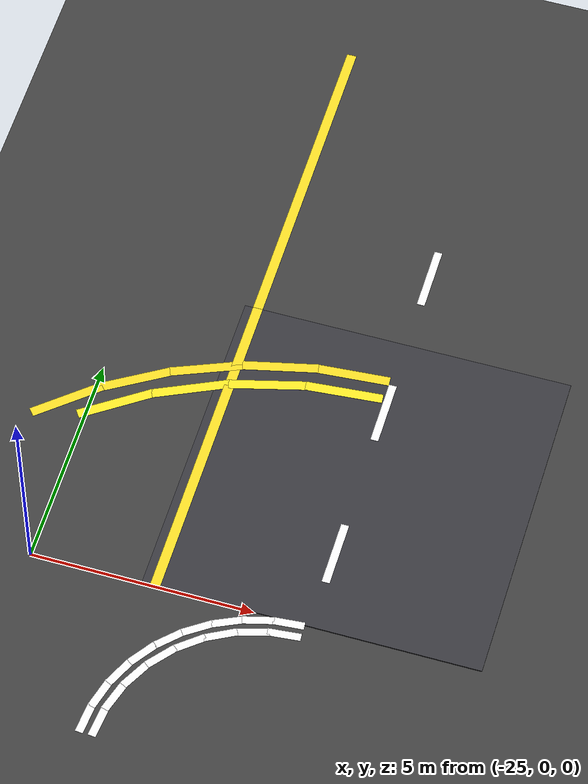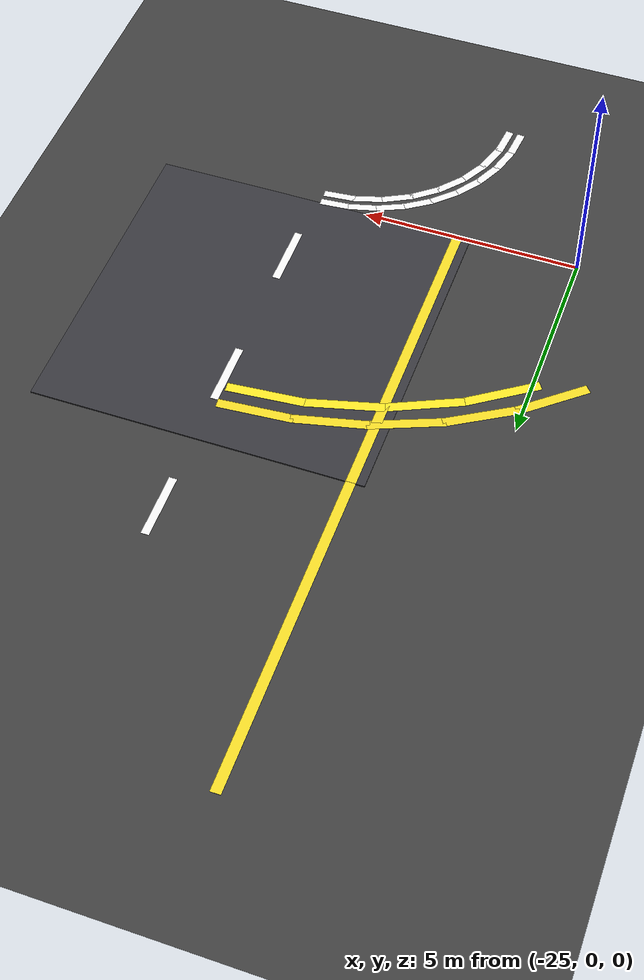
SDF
<sdf version="1.7">
 <world name="compact_city">
  <model name="ground_plane">
   <static>1</static>
   <pose>0 0 0.01 0 -0 0</pose>
   <link name="link">
    <collision name="collision">
     <geometry><plane><normal>0 0 1</normal><size>200 200</size></plane></geometry>
    </collision>
    <visual name="visual">
     <geometry><plane><normal>0 0 1</normal><size>200 200</size></plane></geometry>
     <material>
      <ambient>0.2 0.2 0.2 1</ambient>
      <diffuse>0.25 0.25 0.25 1</diffuse>
      <specular>0.1 0.1 0.1 1</specular>
     </material>
    </visual>
   </link>
  </model>
  <model name="road_tile_42">
   <static>1</static>
   <pose>-18.75 3.75 0.015 0 -0 1.5708</pose>
   <link name="link">
    <collision name="collision"><geometry><box><size>7.5 7.5 0.03</size></box></geometry></collision>
    <visual name="visual">
     <geometry><box><size>7.5 7.5 0.03</size></box></geometry>
     <material>
      <ambient>0.18 0.18 0.2 1</ambient>
      <diffuse>0.22 0.22 0.24 1</diffuse>
      <specular>0.1 0.1 0.1 1</specular>
     </material>
    </visual>
   </link>
  </model>
  <model name="el_169">
   <static>1</static>
   <pose>-22.2 3.75 0.038 0 -0 1.5708</pose>
   <link name="link">
    <visual name="v">
     <geometry><box><size>7.5 0.225 0.002</size></box></geometry>
     <material><ambient>0.9 0.8 0.1 1</ambient><diffuse>0.95 0.85 0.15 1</diffuse></material>
    </visual>
   </link>
  </model>
  <model name="el_171">
   <static>1</static>
   <pose>-22.2 11.25 0.038 0 -0 1.5708</pose>
   <link name="link">
    <visual name="v">
     <geometry><box><size>7.5 0.225 0.002</size></box></geometry>
     <material><ambient>0.9 0.8 0.1 1</ambient><diffuse>0.95 0.85 0.15 1</diffuse></material>
    </visual>
   </link>
  </model>
  <model name="ld_23">
   <static>1</static>
   <pose>-18.75 1.875 0.038 0 -0 1.5708</pose>
   <link name="link">
    <visual name="v">
     <geometry><box><size>1.5 0.18 0.002</size></box></geometry>
     <material><ambient>1 1 1 1</ambient><diffuse>0.95 0.95 0.95 1</diffuse></material>
    </visual>
   </link>
  </model>
  <model name="ld_24">
   <static>1</static>
   <pose>-18.75 5.625 0.038 0 -0 1.5708</pose>
   <link name="link">
    <visual name="v">
     <geometry><box><size>1.5 0.18 0.002</size></box></geometry>
     <material><ambient>1 1 1 1</ambient><diffuse>0.95 0.95 0.95 1</diffuse></material>
    </visual>
   </link>
  </model>
  <model name="ld_25">
   <static>1</static>
   <pose>-18.75 9.375 0.038 0 -0 1.5708</pose>
   <link name="link">
    <visual name="v">
     <geometry><box><size>1.5 0.18 0.002</size></box></geometry>
     <material><ambient>1 1 1 1</ambient><diffuse>0.95 0.95 0.95 1</diffuse></material>
    </visual>
   </link>
  </model>
  <model name="rr_650">
   <static>1</static>
   <pose>-19.2231 -0.34665 0.038 0 0 -3.04338</pose>
   <link name="link">
    <visual name="v">
     <geometry><box><size>0.730424 0.18 0.002</size></box></geometry>
     <material><ambient>1 1 1 1</ambient><diffuse>0.95 0.95 0.95 1</diffuse></material>
    </visual>
   </link>
  </model>
  <model name="rr_651">
   <static>1</static>
   <pose>-19.8865 -0.4785 0.038 0 0 -2.84708</pose>
   <link name="link">
    <visual name="v">
     <geometry><box><size>0.730424 0.18 0.002</size></box></geometry>
     <material><ambient>1 1 1 1</ambient><diffuse>0.95 0.95 0.95 1</diffuse></material>
    </visual>
   </link>
  </model>
  <model name="rr_652">
   <static>1</static>
   <pose>-20.5113 -0.7374 0.038 0 0 -2.65069</pose>
   <link name="link">
    <visual name="v">
     <geometry><box><size>0.730424 0.18 0.002</size></box></geometry>
     <material><ambient>1 1 1 1</ambient><diffuse>0.95 0.95 0.95 1</diffuse></material>
    </visual>
   </link>
  </model>
  <model name="rr_653">
   <static>1</static>
   <pose>-21.0737 -1.11315 0.038 0 0 -2.45438</pose>
   <link name="link">
    <visual name="v">
     <geometry><box><size>0.730424 0.18 0.002</size></box></geometry>
     <material><ambient>1 1 1 1</ambient><diffuse>0.95 0.95 0.95 1</diffuse></material>
    </visual>
   </link>
  </model>
  <model name="rr_654">
   <static>1</static>
   <pose>-21.5519 -1.59135 0.038 0 0 -2.25799</pose>
   <link name="link">
    <visual name="v">
     <geometry><box><size>0.730424 0.18 0.002</size></box></geometry>
     <material><ambient>1 1 1 1</ambient><diffuse>0.95 0.95 0.95 1</diffuse></material>
    </visual>
   </link>
  </model>
  <model name="rr_655">
   <static>1</static>
   <pose>-21.9276 -2.1537 0.038 0 0 -2.06169</pose>
   <link name="link">
    <visual name="v">
     <geometry><box><size>0.730424 0.18 0.002</size></box></geometry>
     <material><ambient>1 1 1 1</ambient><diffuse>0.95 0.95 0.95 1</diffuse></material>
    </visual>
   </link>
  </model>
  <model name="rr_656">
   <static>1</static>
   <pose>-22.1865 -2.77845 0.038 0 0 -1.86529</pose>
   <link name="link">
    <visual name="v">
     <geometry><box><size>0.730424 0.18 0.002</size></box></geometry>
     <material><ambient>1 1 1 1</ambient><diffuse>0.95 0.95 0.95 1</diffuse></material>
    </visual>
   </link>
  </model>
  <model name="rr_657">
   <static>1</static>
   <pose>-22.3183 -3.4419 0.038 0 0 -1.66898</pose>
   <link name="link">
    <visual name="v">
     <geometry><box><size>0.730424 0.18 0.002</size></box></geometry>
     <material><ambient>1 1 1 1</ambient><diffuse>0.95 0.95 0.95 1</diffuse></material>
    </visual>
   </link>
  </model>
  <model name="ro_684">
   <static>1</static>
   <pose>-19.6852 6.3885 0.038 0 0 -3.06309</pose>
   <link name="link">
    <visual name="v">
     <geometry><box><size>1.6806 0.225 0.002</size></box></geometry>
     <material><ambient>0.9 0.8 0.1 1</ambient><diffuse>0.95 0.85 0.15 1</diffuse></material>
    </visual>
   </link>
  </model>
  <model name="ro_685">
   <static>1</static>
   <pose>-21.2661 6.13815 0.038 0 0 -2.90598</pose>
   <link name="link">
    <visual name="v">
     <geometry><box><size>1.6806 0.225 0.002</size></box></geometry>
     <material><ambient>0.9 0.8 0.1 1</ambient><diffuse>0.95 0.85 0.15 1</diffuse></material>
    </visual>
   </link>
  </model>
  <model name="ro_686">
   <static>1</static>
   <pose>-22.7883 5.6436 0.038 0 0 -2.74889</pose>
   <link name="link">
    <visual name="v">
     <geometry><box><size>1.6806 0.225 0.002</size></box></geometry>
     <material><ambient>0.9 0.8 0.1 1</ambient><diffuse>0.95 0.85 0.15 1</diffuse></material>
    </visual>
   </link>
  </model>
  <model name="ro_687">
   <static>1</static>
   <pose>-24.2145 4.917 0.038 0 0 -2.59178</pose>
   <link name="link">
    <visual name="v">
     <geometry><box><size>1.6806 0.225 0.002</size></box></geometry>
     <material><ambient>0.9 0.8 0.1 1</ambient><diffuse>0.95 0.85 0.15 1</diffuse></material>
    </visual>
   </link>
  </model>
  <model name="ro_688">
   <static>1</static>
   <pose>-25.5093 3.9762 0.038 0 0 -2.43468</pose>
   <link name="link">
    <visual name="v">
     <geometry><box><size>1.6806 0.225 0.002</size></box></geometry>
     <material><ambient>0.9 0.8 0.1 1</ambient><diffuse>0.95 0.85 0.15 1</diffuse></material>
    </visual>
   </link>
  </model>
  <model name="ra_ring_510">
   <static>1</static>
   <pose>-19.2107 -0.0585 0.038 0 0 -3.0543</pose>
   <link name="link">
    <visual name="visual">
     <geometry><box><size>0.683669 0.18 0.002</size></box></geometry>
     <material><ambient>1 1 1 1</ambient><diffuse>0.95 0.95 0.95 1</diffuse></material>
    </visual>
   </link>
  </model>
  <model name="ra_ring_511">
   <static>1</static>
   <pose>-19.8519 -0.1716 0.038 0 0 -2.8798</pose>
   <link name="link">
    <visual name="visual">
     <geometry><box><size>0.683669 0.18 0.002</size></box></geometry>
     <material><ambient>1 1 1 1</ambient><diffuse>0.95 0.95 0.95 1</diffuse></material>
    </visual>
   </link>
  </model>
  <model name="ra_ring_512">
   <static>1</static>
   <pose>-20.4638 -0.39435 0.038 0 0 -2.7053</pose>
   <link name="link">
    <visual name="visual">
     <geometry><box><size>0.683669 0.18 0.002</size></box></geometry>
     <material><ambient>1 1 1 1</ambient><diffuse>0.95 0.95 0.95 1</diffuse></material>
    </visual>
   </link>
  </model>
  <model name="ra_ring_513">
   <static>1</static>
   <pose>-21.0278 -0.71985 0.038 0 0 -2.5307</pose>
   <link name="link">
    <visual name="visual">
     <geometry><box><size>0.683669 0.18 0.002</size></box></geometry>
     <material><ambient>1 1 1 1</ambient><diffuse>0.95 0.95 0.95 1</diffuse></material>
    </visual>
   </link>
  </model>
  <model name="ra_ring_514">
   <static>1</static>
   <pose>-21.5265 -1.1385 0.038 0 0 -2.3562</pose>
   <link name="link">
    <visual name="visual">
     <geometry><box><size>0.683669 0.18 0.002</size></box></geometry>
     <material><ambient>1 1 1 1</ambient><diffuse>0.95 0.95 0.95 1</diffuse></material>
    </visual>
   </link>
  </model>
  <model name="ra_ring_515">
   <static>1</static>
   <pose>-21.9452 -1.63725 0.038 0 0 -2.1817</pose>
   <link name="link">
    <visual name="visual">
     <geometry><box><size>0.683669 0.18 0.002</size></box></geometry>
     <material><ambient>1 1 1 1</ambient><diffuse>0.95 0.95 0.95 1</diffuse></material>
    </visual>
   </link>
  </model>
  <model name="ra_ring_516">
   <static>1</static>
   <pose>-22.2706 -2.20125 0.038 0 0 -2.0071</pose>
   <link name="link">
    <visual name="visual">
     <geometry><box><size>0.683669 0.18 0.002</size></box></geometry>
     <material><ambient>1 1 1 1</ambient><diffuse>0.95 0.95 0.95 1</diffuse></material>
    </visual>
   </link>
  </model>
  <model name="ra_ring_517">
   <static>1</static>
   <pose>-22.4934 -2.8131 0.038 0 0 -1.8326</pose>
   <link name="link">
    <visual name="visual">
     <geometry><box><size>0.683669 0.18 0.002</size></box></geometry>
     <material><ambient>1 1 1 1</ambient><diffuse>0.95 0.95 0.95 1</diffuse></material>
    </visual>
   </link>
  </model>
  <model name="ra_ring_518">
   <static>1</static>
   <pose>-22.6065 -3.45435 0.038 0 0 -1.6581</pose>
   <link name="link">
    <visual name="visual">
     <geometry><box><size>0.683669 0.18 0.002</size></box></geometry>
     <material><ambient>1 1 1 1</ambient><diffuse>0.95 0.95 0.95 1</diffuse></material>
    </visual>
   </link>
  </model>
  <model name="ra_outer_546">
   <static>1</static>
   <pose>-19.7316 5.8959 0.038 0 0 -3.0543</pose>
   <link name="link">
    <visual name="visual">
     <geometry><box><size>1.72953 0.225 0.002</size></box></geometry>
     <material><ambient>0.95 0.85 0.1 1</ambient><diffuse>1 0.9 0.15 1</diffuse></material>
    </visual>
   </link>
  </model>
  <model name="ra_outer_547">
   <static>1</static>
   <pose>-21.3988 5.6019 0.038 0 0 -2.8798</pose>
   <link name="link">
    <visual name="visual">
     <geometry><box><size>1.72953 0.225 0.002</size></box></geometry>
     <material><ambient>0.95 0.85 0.1 1</ambient><diffuse>1 0.9 0.15 1</diffuse></material>
    </visual>
   </link>
  </model>
  <model name="ra_outer_548">
   <static>1</static>
   <pose>-22.9899 5.0229 0.038 0 0 -2.7053</pose>
   <link name="link">
    <visual name="visual">
     <geometry><box><size>1.72953 0.225 0.002</size></box></geometry>
     <material><ambient>0.95 0.85 0.1 1</ambient><diffuse>1 0.9 0.15 1</diffuse></material>
    </visual>
   </link>
  </model>
  <model name="ra_outer_549">
   <static>1</static>
   <pose>-24.4562 4.1763 0.038 0 0 -2.5307</pose>
   <link name="link">
    <visual name="visual">
     <geometry><box><size>1.72953 0.225 0.002</size></box></geometry>
     <material><ambient>0.95 0.85 0.1 1</ambient><diffuse>1 0.9 0.15 1</diffuse></material>
    </visual>
   </link>
  </model>
 </world>
</sdf>
